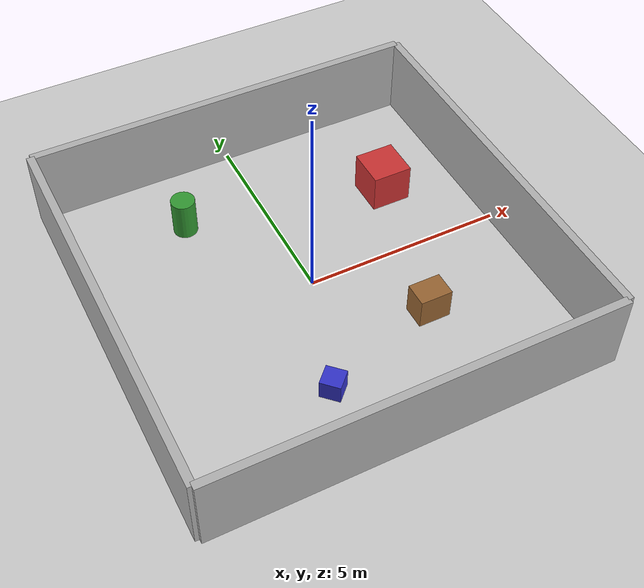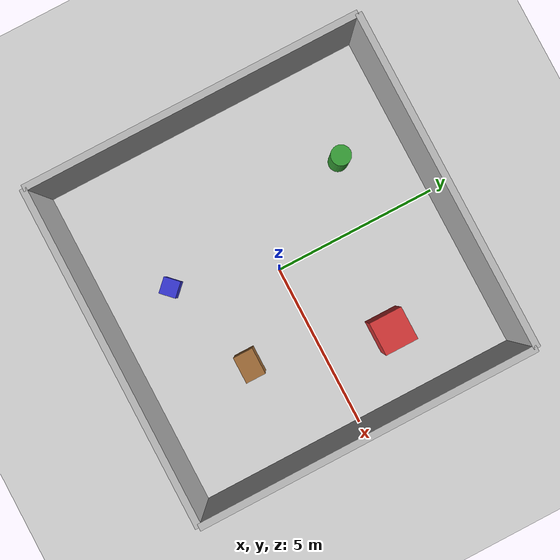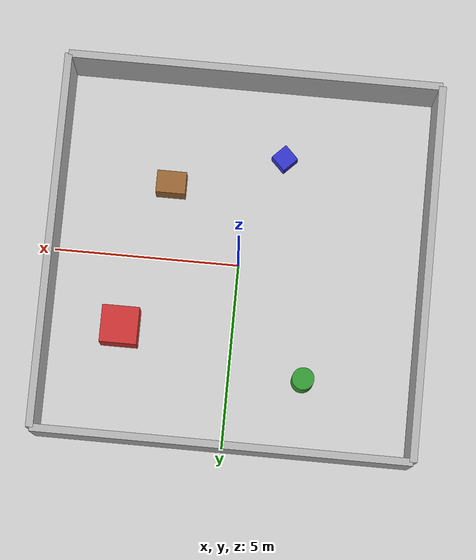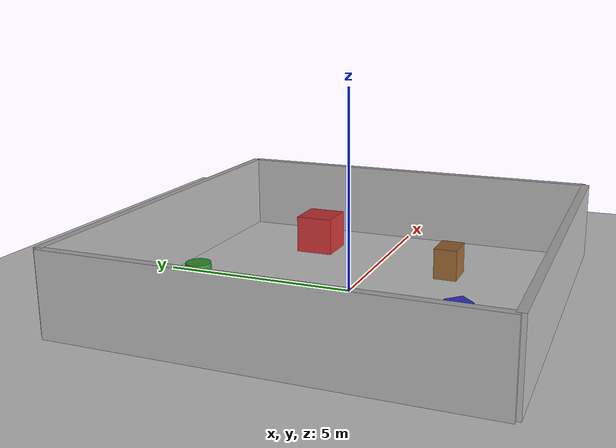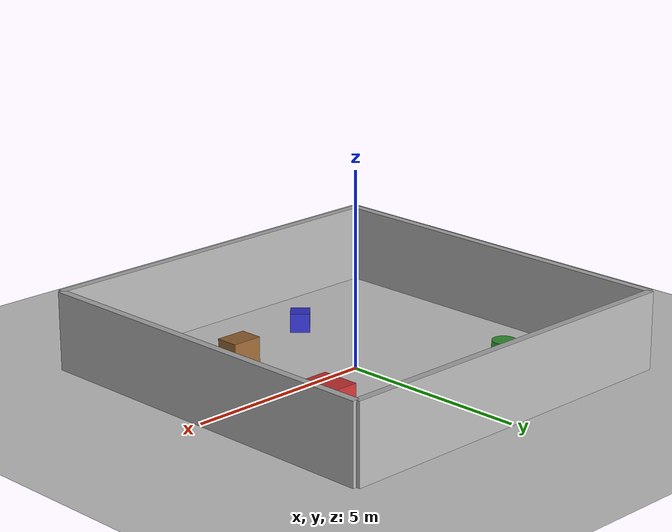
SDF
<?xml version="1.0"?>
<sdf version="1.8">
  <world name="humanoid_world">

    <!-- Physics: DART engine at 1ms timestep -->
    <physics name="1ms" type="dart">
      <max_step_size>0.001</max_step_size>
      <real_time_factor>1.0</real_time_factor>
    </physics>

    <!-- ==================== System Plugins ==================== -->

    <!-- Sensors (camera, LiDAR, depth) -->
    <plugin
      filename="ignition-gazebo-sensors-system"
      name="ignition::gazebo::systems::Sensors">
      <render_engine>ogre2</render_engine>
    </plugin>

    <!-- IMU -->
    <plugin
      filename="ignition-gazebo-imu-system"
      name="ignition::gazebo::systems::Imu">
    </plugin>

    <!-- Contact -->
    <plugin
      filename="ignition-gazebo-contact-system"
      name="ignition::gazebo::systems::Contact">
    </plugin>

    <!-- Joint state publisher -->
    <plugin
      filename="ignition-gazebo-joint-state-publisher-system"
      name="ignition::gazebo::systems::JointStatePublisher">
    </plugin>

    <!-- Scene broadcaster (for visualization) -->
    <plugin
      filename="ignition-gazebo-scene-broadcaster-system"
      name="ignition::gazebo::systems::SceneBroadcaster">
    </plugin>

    <!-- User commands (spawn/delete models) -->
    <plugin
      filename="ignition-gazebo-user-commands-system"
      name="ignition::gazebo::systems::UserCommands">
    </plugin>

    <!-- ==================== Lighting ==================== -->

    <light type="directional" name="sun">
      <cast_shadows>true</cast_shadows>
      <pose>0 0 10 0 0 0</pose>
      <diffuse>0.8 0.8 0.8 1</diffuse>
      <specular>0.2 0.2 0.2 1</specular>
      <attenuation>
        <range>1000</range>
        <constant>0.9</constant>
        <linear>0.01</linear>
        <quadratic>0.001</quadratic>
      </attenuation>
      <direction>-0.5 0.1 -0.9</direction>
    </light>

    <!-- ==================== Ground Plane ==================== -->

    <model name="ground_plane">
      <static>true</static>
      <link name="link">
        <collision name="collision">
          <geometry>
            <plane>
              <normal>0 0 1</normal>
              <size>100 100</size>
            </plane>
          </geometry>
          <surface>
            <friction>
              <ode>
                <mu>0.8</mu>
                <mu2>0.8</mu2>
              </ode>
            </friction>
          </surface>
        </collision>
        <visual name="visual">
          <geometry>
            <plane>
              <normal>0 0 1</normal>
              <size>100 100</size>
            </plane>
          </geometry>
          <material>
            <ambient>0.8 0.8 0.8 1</ambient>
            <diffuse>0.8 0.8 0.8 1</diffuse>
          </material>
        </visual>
      </link>
    </model>

    <!-- ==================== Walls (10m x 10m room) ==================== -->

    <model name="wall_north">
      <static>true</static>
      <pose>0 5 1 0 0 0</pose>
      <link name="link">
        <collision name="collision">
          <geometry><box><size>10 0.2 2</size></box></geometry>
        </collision>
        <visual name="visual">
          <geometry><box><size>10 0.2 2</size></box></geometry>
          <material><ambient>0.7 0.7 0.7 1</ambient></material>
        </visual>
      </link>
    </model>

    <model name="wall_south">
      <static>true</static>
      <pose>0 -5 1 0 0 0</pose>
      <link name="link">
        <collision name="collision">
          <geometry><box><size>10 0.2 2</size></box></geometry>
        </collision>
        <visual name="visual">
          <geometry><box><size>10 0.2 2</size></box></geometry>
          <material><ambient>0.7 0.7 0.7 1</ambient></material>
        </visual>
      </link>
    </model>

    <model name="wall_east">
      <static>true</static>
      <pose>5 0 1 0 0 1.5708</pose>
      <link name="link">
        <collision name="collision">
          <geometry><box><size>10 0.2 2</size></box></geometry>
        </collision>
        <visual name="visual">
          <geometry><box><size>10 0.2 2</size></box></geometry>
          <material><ambient>0.7 0.7 0.7 1</ambient></material>
        </visual>
      </link>
    </model>

    <model name="wall_west">
      <static>true</static>
      <pose>-5 0 1 0 0 1.5708</pose>
      <link name="link">
        <collision name="collision">
          <geometry><box><size>10 0.2 2</size></box></geometry>
        </collision>
        <visual name="visual">
          <geometry><box><size>10 0.2 2</size></box></geometry>
          <material><ambient>0.7 0.7 0.7 1</ambient></material>
        </visual>
      </link>
    </model>

    <!-- ==================== Obstacles ==================== -->

    <model name="box_obstacle_1">
      <static>true</static>
      <pose>3 2 0.5 0 0 0</pose>
      <link name="link">
        <collision name="collision">
          <geometry><box><size>1 1 1</size></box></geometry>
        </collision>
        <visual name="visual">
          <geometry><box><size>1 1 1</size></box></geometry>
          <material><ambient>0.8 0.2 0.2 1</ambient></material>
        </visual>
      </link>
    </model>

    <model name="cylinder_obstacle_1">
      <static>true</static>
      <pose>-2 3 0.5 0 0 0</pose>
      <link name="link">
        <collision name="collision">
          <geometry><cylinder><radius>0.3</radius><length>1.0</length></cylinder></geometry>
        </collision>
        <visual name="visual">
          <geometry><cylinder><radius>0.3</radius><length>1.0</length></cylinder></geometry>
          <material><ambient>0.2 0.6 0.2 1</ambient></material>
        </visual>
      </link>
    </model>

    <model name="box_obstacle_2">
      <static>true</static>
      <pose>-1 -3 0.25 0 0 0.785</pose>
      <link name="link">
        <collision name="collision">
          <geometry><box><size>0.5 0.5 0.5</size></box></geometry>
        </collision>
        <visual name="visual">
          <geometry><box><size>0.5 0.5 0.5</size></box></geometry>
          <material><ambient>0.2 0.2 0.8 1</ambient></material>
        </visual>
      </link>
    </model>

    <!-- Table with object (for Module 4 pick-and-place) -->
    <model name="table">
      <static>true</static>
      <pose>2 -2 0.4 0 0 0</pose>
      <link name="link">
        <collision name="collision">
          <geometry><box><size>0.8 0.6 0.8</size></box></geometry>
        </collision>
        <visual name="visual">
          <geometry><box><size>0.8 0.6 0.8</size></box></geometry>
          <material><ambient>0.6 0.4 0.2 1</ambient></material>
        </visual>
      </link>
    </model>

  </world>
</sdf>
